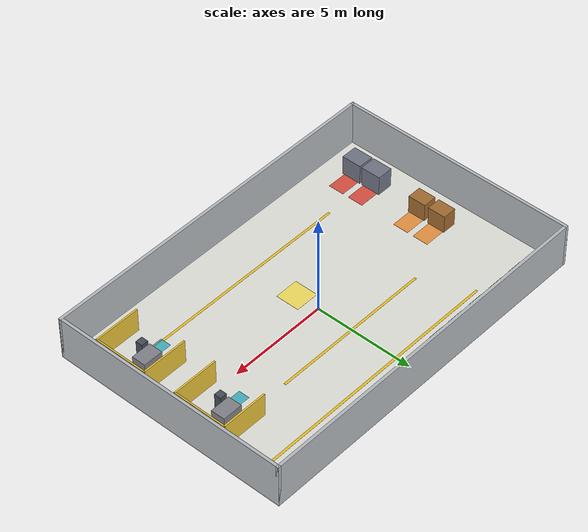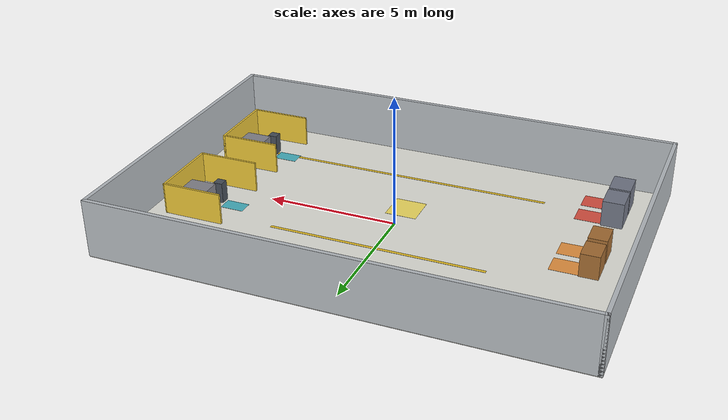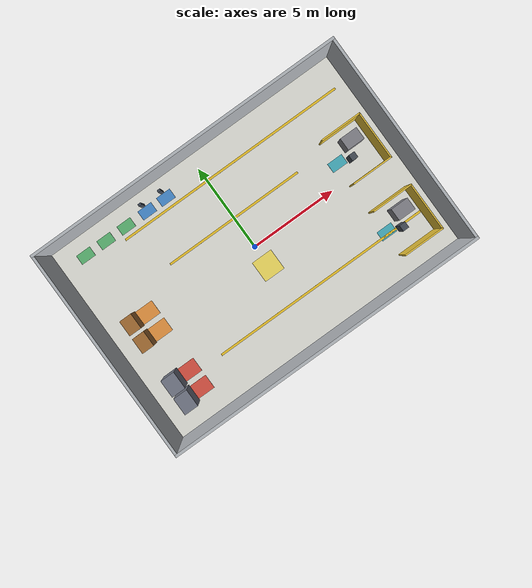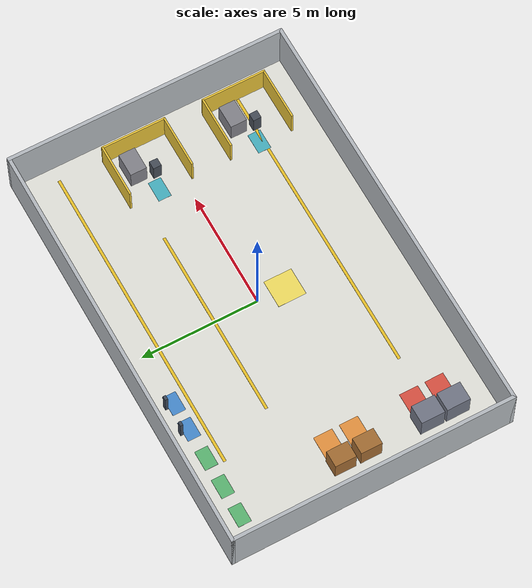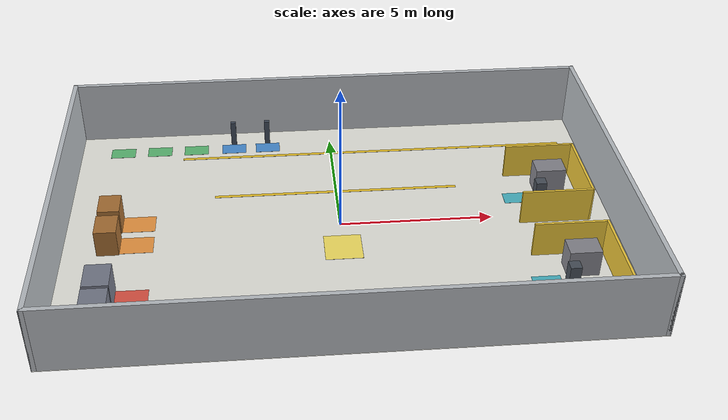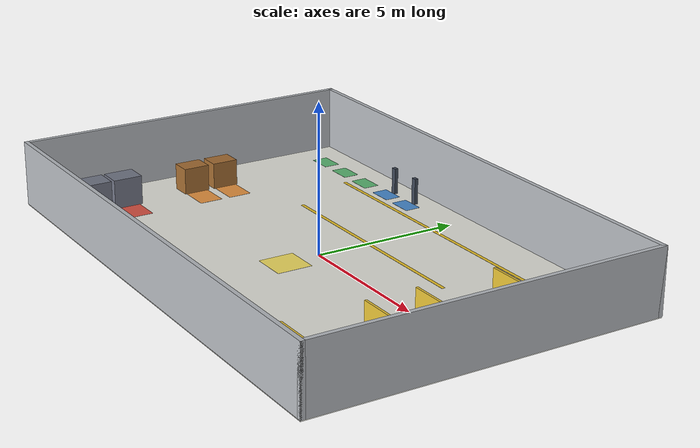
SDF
<sdf version="1.8">
 <world name="fleet_practice_large">
  <physics name="1ms" type="ignored">
   <max_step_size>0.001</max_step_size>
   <real_time_factor>1.0</real_time_factor>
  </physics>
  <plugin filename="gz-sim-physics-system" name="gz::sim::systems::Physics"/>
  <plugin filename="gz-sim-sensors-system" name="gz::sim::systems::Sensors">
   <render_engine>ogre2</render_engine>
  </plugin>
  <plugin filename="gz-sim-user-commands-system" name="gz::sim::systems::UserCommands"/>
  <plugin filename="gz-sim-scene-broadcaster-system" name="gz::sim::systems::SceneBroadcaster"/>
  <plugin filename="gz-sim-imu-system" name="gz::sim::systems::Imu"/>
  <scene>
   <ambient>0.72 0.72 0.72 1</ambient>
   <background>0.94 0.95 0.97 1</background>
   <shadows>false</shadows>
  </scene>
  <light type="directional" name="sun">
   <cast_shadows>false</cast_shadows>
   <pose>0 0 12 0 0 0</pose>
   <diffuse>0.95 0.95 0.95 1</diffuse>
   <specular>0.5 0.5 0.5 1</specular>
   <attenuation><range>1000</range><constant>1</constant><linear>0</linear><quadratic>0</quadratic></attenuation>
   <direction>-0.2 0.1 -1.0</direction>
  </light>
  <model name="floor">
   <static>true</static>
   <link name="floor_link">
    <collision name="floor_collision">
     <geometry><plane><normal>0 0 1</normal><size>18 12</size></plane></geometry>
    </collision>
    <visual name="floor_visual">
     <geometry><plane><normal>0 0 1</normal><size>18 12</size></plane></geometry>
     <material>
      <ambient>0.90 0.90 0.87 1</ambient>
      <diffuse>0.90 0.90 0.87 1</diffuse>
      <specular>0.08 0.08 0.08 1</specular>
     </material>
    </visual>
   </link>
  </model>
  <model name="north_wall">
   <static>true</static>
   <pose>0 5.925 1.1 0 0 0</pose>
   <link name="wall_link">
    <collision name="wall_collision"><geometry><box><size>18.0 0.15 2.2</size></box></geometry></collision>
    <visual name="wall_visual">
     <geometry><box><size>18.0 0.15 2.2</size></box></geometry>
     <material>
      <ambient>0.72 0.74 0.76 1</ambient>
      <diffuse>0.72 0.74 0.76 1</diffuse>
      <specular>0.1 0.1 0.1 1</specular>
     </material>
    </visual>
   </link>
  </model>
  <model name="south_wall">
   <static>true</static>
   <pose>0 -5.925 1.1 0 0 0</pose>
   <link name="wall_link">
    <collision name="wall_collision"><geometry><box><size>18.0 0.15 2.2</size></box></geometry></collision>
    <visual name="wall_visual">
     <geometry><box><size>18.0 0.15 2.2</size></box></geometry>
     <material>
      <ambient>0.72 0.74 0.76 1</ambient>
      <diffuse>0.72 0.74 0.76 1</diffuse>
      <specular>0.1 0.1 0.1 1</specular>
     </material>
    </visual>
   </link>
  </model>
  <model name="west_wall">
   <static>true</static>
   <pose>-8.925 0 1.1 0 0 0</pose>
   <link name="wall_link">
    <collision name="wall_collision"><geometry><box><size>0.15 12.0 2.2</size></box></geometry></collision>
    <visual name="wall_visual">
     <geometry><box><size>0.15 12.0 2.2</size></box></geometry>
     <material>
      <ambient>0.72 0.74 0.76 1</ambient>
      <diffuse>0.72 0.74 0.76 1</diffuse>
      <specular>0.1 0.1 0.1 1</specular>
     </material>
    </visual>
   </link>
  </model>
  <model name="east_wall">
   <static>true</static>
   <pose>8.925 0 1.1 0 0 0</pose>
   <link name="wall_link">
    <collision name="wall_collision"><geometry><box><size>0.15 12.0 2.2</size></box></geometry></collision>
    <visual name="wall_visual">
     <geometry><box><size>0.15 12.0 2.2</size></box></geometry>
     <material>
      <ambient>0.72 0.74 0.76 1</ambient>
      <diffuse>0.72 0.74 0.76 1</diffuse>
      <specular>0.1 0.1 0.1 1</specular>
     </material>
    </visual>
   </link>
  </model>
  <model name="north_corridor_marking">
   <static>true</static>
   <pose>1.5 4.25 0.002 0 0 0</pose>
   <link name="marking_link">
    <visual name="marking_visual">
     <geometry><box><size>13.5 0.12 0.004</size></box></geometry>
     <material>
      <ambient>0.93 0.77 0.16 1</ambient>
      <diffuse>0.93 0.77 0.16 1</diffuse>
      <specular>0.02 0.02 0.02 1</specular>
     </material>
    </visual>
   </link>
  </model>
  <model name="cross_aisle_marking">
   <static>true</static>
   <pose>0 1.85 0.002 0 0 0</pose>
   <link name="marking_link">
    <visual name="marking_visual">
     <geometry><box><size>8.2 0.12 0.004</size></box></geometry>
     <material>
      <ambient>0.93 0.77 0.16 1</ambient>
      <diffuse>0.93 0.77 0.16 1</diffuse>
      <specular>0.02 0.02 0.02 1</specular>
     </material>
    </visual>
   </link>
  </model>
  <model name="south_corridor_marking">
   <static>true</static>
   <pose>1.7 -3.55 0.002 0 0 0</pose>
   <link name="marking_link">
    <visual name="marking_visual">
     <geometry><box><size>12.8 0.12 0.004</size></box></geometry>
     <material>
      <ambient>0.93 0.77 0.16 1</ambient>
      <diffuse>0.93 0.77 0.16 1</diffuse>
      <specular>0.02 0.02 0.02 1</specular>
     </material>
    </visual>
   </link>
  </model>
  <model name="queue_zone_q1">
   <static>true</static>
   <pose>0 -1.2 0.002 0 0 0</pose>
   <link name="marking_link">
    <visual name="marking_visual">
     <geometry><box><size>1.2 1.2 0.004</size></box></geometry>
     <material>
      <ambient>0.96 0.88 0.38 1</ambient>
      <diffuse>0.96 0.88 0.38 1</diffuse>
      <specular>0.02 0.02 0.02 1</specular>
     </material>
    </visual>
   </link>
  </model>
  <model name="parking_pad_p1">
   <static>true</static>
   <pose>-7.4 4.8 0.002 0 0 0</pose>
   <link name="pad_link">
    <visual name="pad_visual">
     <geometry><box><size>0.85 0.55 0.004</size></box></geometry>
     <material>
      <ambient>0.36 0.72 0.45 1</ambient>
      <diffuse>0.36 0.72 0.45 1</diffuse>
      <specular>0.02 0.02 0.02 1</specular>
     </material>
    </visual>
   </link>
  </model>
  <model name="parking_pad_p2">
   <static>true</static>
   <pose>-6.1 4.8 0.002 0 0 0</pose>
   <link name="pad_link">
    <visual name="pad_visual">
     <geometry><box><size>0.85 0.55 0.004</size></box></geometry>
     <material>
      <ambient>0.36 0.72 0.45 1</ambient>
      <diffuse>0.36 0.72 0.45 1</diffuse>
      <specular>0.02 0.02 0.02 1</specular>
     </material>
    </visual>
   </link>
  </model>
  <model name="parking_pad_p3">
   <static>true</static>
   <pose>-4.8 4.8 0.002 0 0 0</pose>
   <link name="pad_link">
    <visual name="pad_visual">
     <geometry><box><size>0.85 0.55 0.004</size></box></geometry>
     <material>
      <ambient>0.36 0.72 0.45 1</ambient>
      <diffuse>0.36 0.72 0.45 1</diffuse>
      <specular>0.02 0.02 0.02 1</specular>
     </material>
    </visual>
   </link>
  </model>
  <model name="charger_pad_c1">
   <static>true</static>
   <pose>-3.45 4.8 0.002 0 0 0</pose>
   <link name="pad_link">
    <visual name="pad_visual">
     <geometry><box><size>0.85 0.55 0.004</size></box></geometry>
     <material>
      <ambient>0.28 0.55 0.82 1</ambient>
      <diffuse>0.28 0.55 0.82 1</diffuse>
      <specular>0.02 0.02 0.02 1</specular>
     </material>
    </visual>
   </link>
  </model>
  <model name="charger_pad_c2">
   <static>true</static>
   <pose>-2.25 4.8 0.002 0 0 0</pose>
   <link name="pad_link">
    <visual name="pad_visual">
     <geometry><box><size>0.85 0.55 0.004</size></box></geometry>
     <material>
      <ambient>0.28 0.55 0.82 1</ambient>
      <diffuse>0.28 0.55 0.82 1</diffuse>
      <specular>0.02 0.02 0.02 1</specular>
     </material>
    </visual>
   </link>
  </model>
  <model name="charger_post_c1">
   <static>true</static>
   <pose>-3.45 5.15 0.45 0 0 0</pose>
   <link name="post_link">
    <collision name="post_collision"><geometry><box><size>0.18 0.12 0.9</size></box></geometry></collision>
    <visual name="post_visual">
     <geometry><box><size>0.18 0.12 0.9</size></box></geometry>
     <material>
      <ambient>0.25 0.29 0.35 1</ambient>
      <diffuse>0.25 0.29 0.35 1</diffuse>
      <specular>0.04 0.04 0.04 1</specular>
     </material>
    </visual>
   </link>
  </model>
  <model name="charger_post_c2">
   <static>true</static>
   <pose>-2.25 5.15 0.45 0 0 0</pose>
   <link name="post_link">
    <collision name="post_collision"><geometry><box><size>0.18 0.12 0.9</size></box></geometry></collision>
    <visual name="post_visual">
     <geometry><box><size>0.18 0.12 0.9</size></box></geometry>
     <material>
      <ambient>0.25 0.29 0.35 1</ambient>
      <diffuse>0.25 0.29 0.35 1</diffuse>
      <specular>0.04 0.04 0.04 1</specular>
     </material>
    </visual>
   </link>
  </model>
  <model name="loading_pad_l1">
   <static>true</static>
   <pose>-6.6 -0.6 0.002 0 0 0</pose>
   <link name="pad_link">
    <visual name="pad_visual">
     <geometry><box><size>1.2 0.8 0.004</size></box></geometry>
     <material>
      <ambient>0.91 0.58 0.25 1</ambient>
      <diffuse>0.91 0.58 0.25 1</diffuse>
      <specular>0.02 0.02 0.02 1</specular>
     </material>
    </visual>
   </link>
  </model>
  <model name="loading_pad_l2">
   <static>true</static>
   <pose>-6.6 0.5 0.002 0 0 0</pose>
   <link name="pad_link">
    <visual name="pad_visual">
     <geometry><box><size>1.2 0.8 0.004</size></box></geometry>
     <material>
      <ambient>0.91 0.58 0.25 1</ambient>
      <diffuse>0.91 0.58 0.25 1</diffuse>
      <specular>0.02 0.02 0.02 1</specular>
     </material>
    </visual>
   </link>
  </model>
  <model name="loading_station_l1">
   <static>true</static>
   <pose>-7.4 -0.6 0.45 0 0 0</pose>
   <link name="station_link">
    <collision name="station_collision"><geometry><box><size>0.7 0.9 0.9</size></box></geometry></collision>
    <visual name="station_visual">
     <geometry><box><size>0.7 0.9 0.9</size></box></geometry>
     <material>
      <ambient>0.65 0.43 0.20 1</ambient>
      <diffuse>0.65 0.43 0.20 1</diffuse>
      <specular>0.04 0.04 0.04 1</specular>
     </material>
    </visual>
   </link>
  </model>
  <model name="loading_station_l2">
   <static>true</static>
   <pose>-7.4 0.5 0.45 0 0 0</pose>
   <link name="station_link">
    <collision name="station_collision"><geometry><box><size>0.7 0.9 0.9</size></box></geometry></collision>
    <visual name="station_visual">
     <geometry><box><size>0.7 0.9 0.9</size></box></geometry>
     <material>
      <ambient>0.65 0.43 0.20 1</ambient>
      <diffuse>0.65 0.43 0.20 1</diffuse>
      <specular>0.04 0.04 0.04 1</specular>
     </material>
    </visual>
   </link>
  </model>
  <model name="outbound_pad_o1">
   <static>true</static>
   <pose>-6.6 -4.3 0.002 0 0 0</pose>
   <link name="pad_link">
    <visual name="pad_visual">
     <geometry><box><size>1.2 0.8 0.004</size></box></geometry>
     <material>
      <ambient>0.86 0.32 0.26 1</ambient>
      <diffuse>0.86 0.32 0.26 1</diffuse>
      <specular>0.02 0.02 0.02 1</specular>
     </material>
    </visual>
   </link>
  </model>
  <model name="outbound_pad_o2">
   <static>true</static>
   <pose>-6.6 -3.2 0.002 0 0 0</pose>
   <link name="pad_link">
    <visual name="pad_visual">
     <geometry><box><size>1.2 0.8 0.004</size></box></geometry>
     <material>
      <ambient>0.86 0.32 0.26 1</ambient>
      <diffuse>0.86 0.32 0.26 1</diffuse>
      <specular>0.02 0.02 0.02 1</specular>
     </material>
    </visual>
   </link>
  </model>
  <model name="outbound_station_o1">
   <static>true</static>
   <pose>-7.4 -4.3 0.5 0 0 0</pose>
   <link name="station_link">
    <collision name="station_collision"><geometry><box><size>0.8 1.0 1.0</size></box></geometry></collision>
    <visual name="station_visual">
     <geometry><box><size>0.8 1.0 1.0</size></box></geometry>
     <material>
      <ambient>0.45 0.47 0.53 1</ambient>
      <diffuse>0.45 0.47 0.53 1</diffuse>
      <specular>0.04 0.04 0.04 1</specular>
     </material>
    </visual>
   </link>
  </model>
  <model name="outbound_station_o2">
   <static>true</static>
   <pose>-7.4 -3.2 0.5 0 0 0</pose>
   <link name="station_link">
    <collision name="station_collision"><geometry><box><size>0.8 1.0 1.0</size></box></geometry></collision>
    <visual name="station_visual">
     <geometry><box><size>0.8 1.0 1.0</size></box></geometry>
     <material>
      <ambient>0.45 0.47 0.53 1</ambient>
      <diffuse>0.45 0.47 0.53 1</diffuse>
      <specular>0.04 0.04 0.04 1</specular>
     </material>
    </visual>
   </link>
  </model>
  <model name="arm_cell_1_fence_north">
   <static>true</static>
   <pose>7.0 2.35 0.6 0 0 0</pose>
   <link name="fence_link">
    <collision name="fence_collision"><geometry><box><size>2.3 0.08 1.2</size></box></geometry></collision>
    <visual name="fence_visual">
     <geometry><box><size>2.3 0.08 1.2</size></box></geometry>
     <material>
      <ambient>0.93 0.78 0.22 1</ambient>
      <diffuse>0.93 0.78 0.22 1</diffuse>
      <specular>0.04 0.04 0.04 1</specular>
     </material>
    </visual>
   </link>
  </model>
  <model name="arm_cell_1_fence_south">
   <static>true</static>
   <pose>7.0 -0.35 0.6 0 0 0</pose>
   <link name="fence_link">
    <collision name="fence_collision"><geometry><box><size>2.3 0.08 1.2</size></box></geometry></collision>
    <visual name="fence_visual">
     <geometry><box><size>2.3 0.08 1.2</size></box></geometry>
     <material>
      <ambient>0.93 0.78 0.22 1</ambient>
      <diffuse>0.93 0.78 0.22 1</diffuse>
      <specular>0.04 0.04 0.04 1</specular>
     </material>
    </visual>
   </link>
  </model>
  <model name="arm_cell_1_fence_east">
   <static>true</static>
   <pose>8.15 1.0 0.6 0 0 0</pose>
   <link name="fence_link">
    <collision name="fence_collision"><geometry><box><size>0.08 2.78 1.2</size></box></geometry></collision>
    <visual name="fence_visual">
     <geometry><box><size>0.08 2.78 1.2</size></box></geometry>
     <material>
      <ambient>0.93 0.78 0.22 1</ambient>
      <diffuse>0.93 0.78 0.22 1</diffuse>
      <specular>0.04 0.04 0.04 1</specular>
     </material>
    </visual>
   </link>
  </model>
  <model name="arm_cell_1_table">
   <static>true</static>
   <pose>7.2 1.55 0.45 0 0 0</pose>
   <link name="table_link">
    <collision name="table_collision"><geometry><box><size>1.0 0.7 0.9</size></box></geometry></collision>
    <visual name="table_visual">
     <geometry><box><size>1.0 0.7 0.9</size></box></geometry>
     <material>
      <ambient>0.52 0.52 0.55 1</ambient>
      <diffuse>0.52 0.52 0.55 1</diffuse>
      <specular>0.06 0.06 0.06 1</specular>
     </material>
    </visual>
   </link>
  </model>
  <model name="arm_cell_1_pedestal">
   <static>true</static>
   <pose>6.75 0.8 0.4 0 0 0</pose>
   <link name="pedestal_link">
    <collision name="pedestal_collision"><geometry><box><size>0.35 0.35 0.8</size></box></geometry></collision>
    <visual name="pedestal_visual">
     <geometry><box><size>0.35 0.35 0.8</size></box></geometry>
     <material>
      <ambient>0.28 0.31 0.35 1</ambient>
      <diffuse>0.28 0.31 0.35 1</diffuse>
      <specular>0.05 0.05 0.05 1</specular>
     </material>
    </visual>
   </link>
  </model>
  <model name="arm_cell_1_dock_pad">
   <static>true</static>
   <pose>6.05 1.0 0.002 0 0 0</pose>
   <link name="pad_link">
    <visual name="pad_visual">
     <geometry><box><size>0.9 0.55 0.004</size></box></geometry>
     <material>
      <ambient>0.28 0.70 0.76 1</ambient>
      <diffuse>0.28 0.70 0.76 1</diffuse>
      <specular>0.02 0.02 0.02 1</specular>
     </material>
    </visual>
   </link>
  </model>
  <model name="arm_cell_2_fence_north">
   <static>true</static>
   <pose>7.0 -2.05 0.6 0 0 0</pose>
   <link name="fence_link">
    <collision name="fence_collision"><geometry><box><size>2.3 0.08 1.2</size></box></geometry></collision>
    <visual name="fence_visual">
     <geometry><box><size>2.3 0.08 1.2</size></box></geometry>
     <material>
      <ambient>0.93 0.78 0.22 1</ambient>
      <diffuse>0.93 0.78 0.22 1</diffuse>
      <specular>0.04 0.04 0.04 1</specular>
     </material>
    </visual>
   </link>
  </model>
  <model name="arm_cell_2_fence_south">
   <static>true</static>
   <pose>7.0 -4.75 0.6 0 0 0</pose>
   <link name="fence_link">
    <collision name="fence_collision"><geometry><box><size>2.3 0.08 1.2</size></box></geometry></collision>
    <visual name="fence_visual">
     <geometry><box><size>2.3 0.08 1.2</size></box></geometry>
     <material>
      <ambient>0.93 0.78 0.22 1</ambient>
      <diffuse>0.93 0.78 0.22 1</diffuse>
      <specular>0.04 0.04 0.04 1</specular>
     </material>
    </visual>
   </link>
  </model>
  <model name="arm_cell_2_fence_east">
   <static>true</static>
   <pose>8.15 -3.4 0.6 0 0 0</pose>
   <link name="fence_link">
    <collision name="fence_collision"><geometry><box><size>0.08 2.78 1.2</size></box></geometry></collision>
    <visual name="fence_visual">
     <geometry><box><size>0.08 2.78 1.2</size></box></geometry>
     <material>
      <ambient>0.93 0.78 0.22 1</ambient>
      <diffuse>0.93 0.78 0.22 1</diffuse>
      <specular>0.04 0.04 0.04 1</specular>
     </material>
    </visual>
   </link>
  </model>
  <model name="arm_cell_2_table">
   <static>true</static>
   <pose>7.2 -2.85 0.45 0 0 0</pose>
   <link name="table_link">
    <collision name="table_collision"><geometry><box><size>1.0 0.7 0.9</size></box></geometry></collision>
    <visual name="table_visual">
     <geometry><box><size>1.0 0.7 0.9</size></box></geometry>
     <material>
      <ambient>0.52 0.52 0.55 1</ambient>
      <diffuse>0.52 0.52 0.55 1</diffuse>
      <specular>0.06 0.06 0.06 1</specular>
     </material>
    </visual>
   </link>
  </model>
  <model name="arm_cell_2_pedestal">
   <static>true</static>
   <pose>6.75 -3.6 0.4 0 0 0</pose>
   <link name="pedestal_link">
    <collision name="pedestal_collision"><geometry><box><size>0.35 0.35 0.8</size></box></geometry></collision>
    <visual name="pedestal_visual">
     <geometry><box><size>0.35 0.35 0.8</size></box></geometry>
     <material>
      <ambient>0.28 0.31 0.35 1</ambient>
      <diffuse>0.28 0.31 0.35 1</diffuse>
      <specular>0.05 0.05 0.05 1</specular>
     </material>
    </visual>
   </link>
  </model>
  <model name="arm_cell_2_dock_pad">
   <static>true</static>
   <pose>6.05 -3.4 0.002 0 0 0</pose>
   <link name="pad_link">
    <visual name="pad_visual">
     <geometry><box><size>0.9 0.55 0.004</size></box></geometry>
     <material>
      <ambient>0.28 0.70 0.76 1</ambient>
      <diffuse>0.28 0.70 0.76 1</diffuse>
      <specular>0.02 0.02 0.02 1</specular>
     </material>
    </visual>
   </link>
  </model>
 </world>
</sdf>
